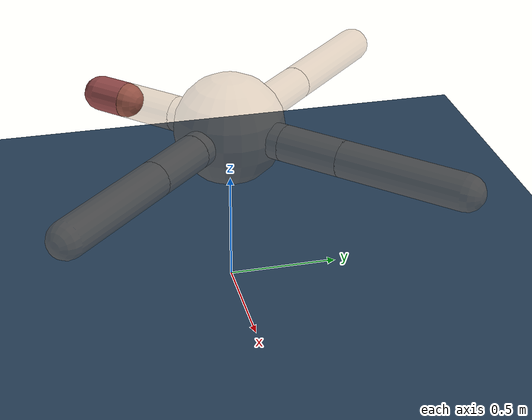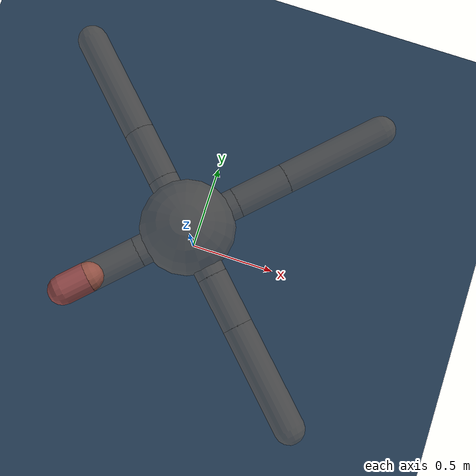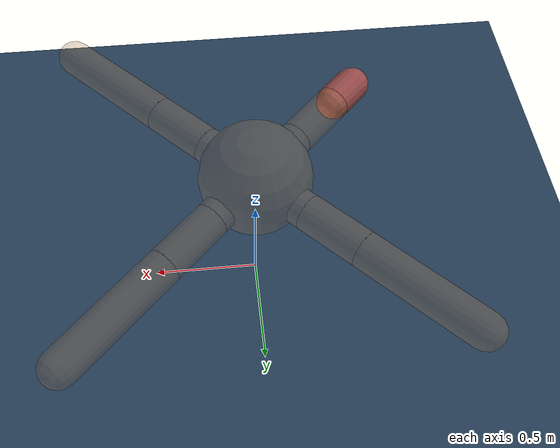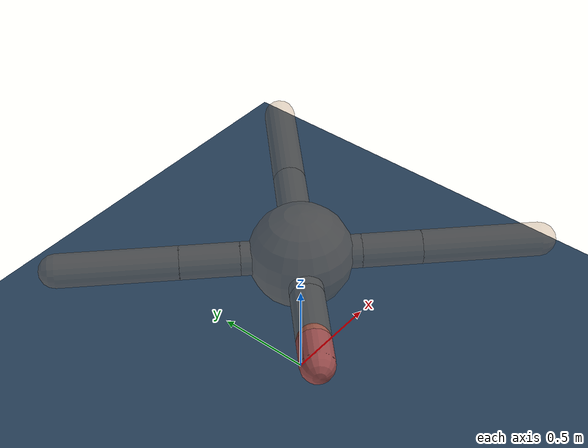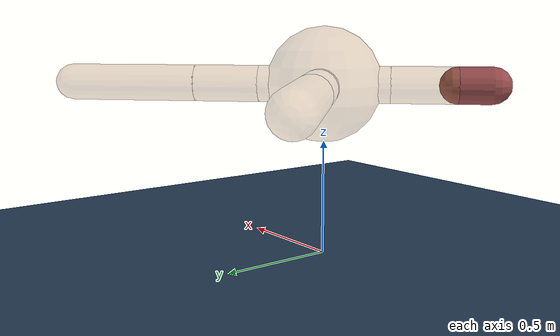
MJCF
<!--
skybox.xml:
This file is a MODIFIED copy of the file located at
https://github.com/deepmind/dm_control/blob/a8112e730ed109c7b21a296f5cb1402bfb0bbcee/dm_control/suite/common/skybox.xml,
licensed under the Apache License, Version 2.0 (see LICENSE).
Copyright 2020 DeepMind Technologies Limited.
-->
<mujoco model="ant">
  <include file="./common/skybox.xml"/>
  <include file="./common/visual.xml"/>
  <include file="./common/materials.xml"/>

  <compiler angle="degree" coordinate="local" inertiafromgeom="true"/>
  <option integrator="Euler" timestep="0.005" iterations="1" ls_iterations="5">
    <flag eulerdamp="disable"/>
  </option>
  <custom>
    <numeric data="0.0 0.0 0.55 1.0 0.0 0.0 0.0 0.0 1.0 0.0 -1.0 0.0 -1.0 0.0 1.0" name="init_qpos"/>
  </custom>

  <default>
    <joint armature="1" damping="1" limited="true"/>
    <geom contype="0" conaffinity="0" condim="3" density="5.0" friction="1 0.5 0.5" margin="0.01" material="self"/>
  </default>

  <worldbody>
    <light name="light" pos="0 0 2" directional="true" diffuse="0.6 0.6 0.6"/>
    <geom contype="1" conaffinity="1" condim="3" material="grid" name="floor" pos="0 0 0" size="160 80 40" type="plane"/>
    <body name="torso" pos="0 0 0.75">
      <light name="light_torso" pos="0 0 2" directional="true" mode="trackcom" diffuse="0.6 0.6 0.6"/>
      <camera name="track" mode="trackcom" pos="0 -3 0.3" xyaxes="1 0 0 0 0 1"/>
      <geom name="torso_geom" pos="0 0 0" size="0.25" type="sphere" contype="0"/>
      <joint armature="0" damping="0" limited="false" margin="0.01" name="root" pos="0 0 0" type="free"/>
      <body name="front_left_leg" pos="0 0 0">
        <geom fromto="0.0 0.0 0.0 0.2 0.2 0.0" name="aux_1_geom" size="0.08" type="capsule"/>
        <body name="aux_1" pos="0.2 0.2 0">
          <joint axis="0 0 1" name="hip_1" pos="0.0 0.0 0.0" range="-30 30" type="hinge"/>
          <geom fromto="0.0 0.0 0.0 0.2 0.2 0.0" name="left_leg_geom" size="0.08" type="capsule"/>
          <body pos="0.2 0.2 0">
            <joint axis="-1 1 0" name="ankle_1" pos="0.0 0.0 0.0" range="30 70" type="hinge"/>
            <geom fromto="0.0 0.0 0.0 0.4 0.4 0.0" name="left_ankle_geom" size="0.08" type="capsule" contype="1"/>
          </body>
        </body>
      </body>
      <body name="front_right_leg" pos="0 0 0">
        <geom fromto="0.0 0.0 0.0 -0.2 0.2 0.0" name="aux_2_geom" size="0.08" type="capsule"/>
        <body name="aux_2" pos="-0.2 0.2 0">
          <joint axis="0 0 1" name="hip_2" pos="0.0 0.0 0.0" range="-30 30" type="hinge"/>
          <geom fromto="0.0 0.0 0.0 -0.2 0.2 0.0" name="right_leg_geom" size="0.08" type="capsule"/>
          <body pos="-0.2 0.2 0">
            <joint axis="1 1 0" name="ankle_2" pos="0.0 0.0 0.0" range="-70 -30" type="hinge"/>
            <geom fromto="0.0 0.0 0.0 -0.4 0.4 0.0" name="right_ankle_geom" size="0.08" type="capsule" contype="1"/>
          </body>
        </body>
      </body>
      <body name="back_leg" pos="0 0 0">
        <geom fromto="0.0 0.0 0.0 -0.2 -0.2 0.0" name="aux_3_geom" size="0.08" type="capsule" />
        <body name="aux_3" pos="-0.2 -0.2 0">
          <joint axis="0 0 1" name="hip_3" pos="0.0 0.0 0.0" range="-30 30" type="hinge"/>
          <geom fromto="0.0 0.0 0.0 -0.2 -0.2 0.0" name="back_leg_geom" size="0.08" type="capsule"/>
          <body pos="-0.2 -0.2 0">
            <joint axis="-1 1 0" name="ankle_3" pos="0.0 0.0 0.0" range="-70 -30" type="hinge"/>
            <geom fromto="0.0 0.0 0.0 -0.1 -0.1 0.0" name="third_ankle_geom" size="0.08" type="capsule" contype="1" material="target"/>
          </body>
        </body>
      </body>
      <body name="right_back_leg" pos="0 0 0">
        <geom fromto="0.0 0.0 0.0 0.2 -0.2 0.0" name="aux_4_geom" size="0.08" type="capsule"/>
        <body name="aux_4" pos="0.2 -0.2 0">
          <joint axis="0 0 1" name="hip_4" pos="0.0 0.0 0.0" range="-30 30" type="hinge"/>
          <geom fromto="0.0 0.0 0.0 0.2 -0.2 0.0" name="rightback_leg_geom" size="0.08" type="capsule"/>
          <body pos="0.2 -0.2 0">
            <joint axis="1 1 0" name="ankle_4" pos="0.0 0.0 0.0" range="30 70" type="hinge"/>
            <geom fromto="0.0 0.0 0.0 0.4 -0.4 0.0" name="fourth_ankle_geom" size="0.08" type="capsule" contype="1"/>
          </body>
        </body>
      </body>
    </body>
  </worldbody>

  <sensor>
    <subtreelinvel name="torso_subtreelinvel" body="torso"/>
  </sensor>

  <actuator>
    <motor ctrllimited="true" ctrlrange="-1.0 1.0" joint="hip_4" gear="150"/>
    <motor ctrllimited="true" ctrlrange="-1.0 1.0" joint="ankle_4" gear="150"/>
    <motor ctrllimited="true" ctrlrange="-1.0 1.0" joint="hip_1" gear="150"/>
    <motor ctrllimited="true" ctrlrange="-1.0 1.0" joint="ankle_1" gear="150"/>
    <motor ctrllimited="true" ctrlrange="-1.0 1.0" joint="hip_2" gear="150"/>
    <motor ctrllimited="true" ctrlrange="-1.0 1.0" joint="ankle_2" gear="150"/>
    <motor ctrllimited="true" ctrlrange="-1.0 1.0" joint="hip_3" gear="150"/>
    <motor ctrllimited="true" ctrlrange="-1.0 1.0" joint="ankle_3" gear="150"/>
  </actuator>
</mujoco>

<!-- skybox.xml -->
<mujoco>
  <asset>
      <texture name="skybox" type="skybox" builtin="gradient" rgb1=".4 .6 .8" rgb2="0 0 0"
               width="800" height="800" mark="random" markrgb="1 1 1"/>
  </asset>
</mujoco>

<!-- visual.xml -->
<mujoco>
  <visual>
    <headlight ambient=".4 .4 .4" diffuse=".8 .8 .8" specular="0.1 0.1 0.1"/>
    <map znear=".01"/>
    <quality shadowsize="2048"/>
  </visual>
</mujoco>

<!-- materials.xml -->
<!--
Common textures, colors and materials to be used throughout this suite. Some
materials such as xxx_highlight are activated on occurence of certain events,
for example receiving a positive reward.
-->
<mujoco>
  <asset>
    <texture name="board" type="2d" builtin="flat" width="300" height="300"/>
    <material name="board" texture="board" reflectance=".2"/>
    <texture name="grid" type="2d" builtin="checker" rgb1=".1 .2 .3" rgb2=".2 .3 .4" width="300" height="300" mark="edge" markrgb=".2 .3 .4"/>
    <material name="grid" texture="grid" texrepeat="1 1" texuniform="true" reflectance=".2"/>
    <material name="self" rgba=".7 .5 .3 0.3"/>
    <material name="self_default" rgba=".7 .5 .3 0.3"/>
    <material name="self_highlight" rgba="0 .5 .3 0.3"/>
    <material name="effector" rgba=".7 .4 .2 1"/>
    <material name="effector_default" rgba=".7 .4 .2 1"/>
    <material name="effector_highlight" rgba="0 .5 .3 1"/>
    <material name="decoration" rgba=".3 .5 .7 1"/>
    <material name="rootjoint" rgba=".3 .5 .7 0"/>
    <material name="eye" rgba="0 .2 1 1"/>
    <material name="target" rgba=".6 .3 .3 1"/>
    <material name="target_default" rgba=".6 .3 .3 1"/>
    <material name="target_highlight" rgba=".6 .3 .3 .4"/>
    <material name="site" rgba=".5 .5 .5 .3"/>
  </asset>
</mujoco>
